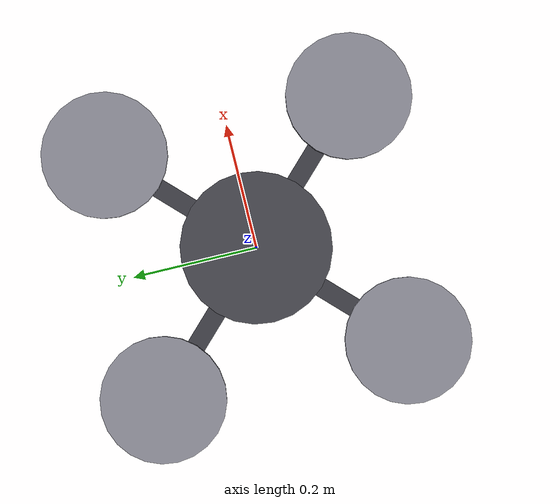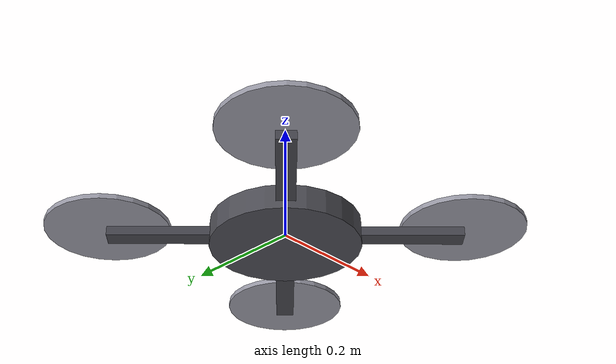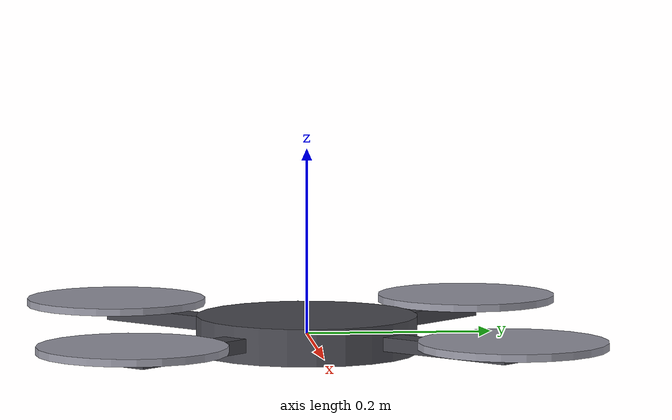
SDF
<?xml version="1.0" ?>
<sdf version="1.9">
  <model name="uav_1">
    <static>true</static>

    <plugin filename="gz-sim-logical-camera-system" name="gz::sim::systems::LogicalCamera"/>

    <link name="base_link">
      <inertial>
        <mass>1.0</mass>
        <inertia>
          <ixx>0.02</ixx><ixy>0</ixy><ixz>0</ixz>
          <iyy>0.02</iyy><iyz>0</iyz>
          <izz>0.04</izz>
        </inertia>
      </inertial>

      <collision name="base_collision">
        <geometry><cylinder><radius>0.12</radius><length>0.04</length></cylinder></geometry>
      </collision>

      <visual name="body">
        <pose>0 0 0 0 0 0</pose>
        <geometry><cylinder><radius>0.12</radius><length>0.04</length></cylinder></geometry>
        <material>
          <ambient>0.25 0.25 0.28 1</ambient>
          <diffuse>0.30 0.30 0.33 1</diffuse>
          <specular>0.15 0.15 0.15 1</specular>
        </material>
      </visual>

      <visual name="arm_nesw">
        <pose>0 0 0 0 0 0.7854</pose>
        <geometry><box><size>0.56 0.03 0.015</size></box></geometry>
        <material>
          <ambient>0.22 0.22 0.25 1</ambient>
          <diffuse>0.27 0.27 0.30 1</diffuse>
          <specular>0.10 0.10 0.10 1</specular>
        </material>
      </visual>

      <visual name="arm_nwse">
        <pose>0 0 0 0 0 -0.7854</pose>
        <geometry><box><size>0.56 0.03 0.015</size></box></geometry>
        <material>
          <ambient>0.22 0.22 0.25 1</ambient>
          <diffuse>0.27 0.27 0.30 1</diffuse>
          <specular>0.10 0.10 0.10 1</specular>
        </material>
      </visual>

      <visual name="rotor_ne">
        <pose>0.198 0.198 0.012 0 0 0</pose>
        <geometry><cylinder><radius>0.10</radius><length>0.008</length></cylinder></geometry>
        <material>
          <ambient>0.55 0.55 0.60 1</ambient>
          <diffuse>0.60 0.60 0.65 1</diffuse>
          <specular>0.20 0.20 0.20 1</specular>
        </material>
      </visual>

      <visual name="rotor_nw">
        <pose>-0.198 0.198 0.012 0 0 0</pose>
        <geometry><cylinder><radius>0.10</radius><length>0.008</length></cylinder></geometry>
        <material>
          <ambient>0.55 0.55 0.60 1</ambient>
          <diffuse>0.60 0.60 0.65 1</diffuse>
          <specular>0.20 0.20 0.20 1</specular>
        </material>
      </visual>

      <visual name="rotor_sw">
        <pose>-0.198 -0.198 0.012 0 0 0</pose>
        <geometry><cylinder><radius>0.10</radius><length>0.008</length></cylinder></geometry>
        <material>
          <ambient>0.55 0.55 0.60 1</ambient>
          <diffuse>0.60 0.60 0.65 1</diffuse>
          <specular>0.20 0.20 0.20 1</specular>
        </material>
      </visual>

      <visual name="rotor_se">
        <pose>0.198 -0.198 0.012 0 0 0</pose>
        <geometry><cylinder><radius>0.10</radius><length>0.008</length></cylinder></geometry>
        <material>
          <ambient>0.55 0.55 0.60 1</ambient>
          <diffuse>0.60 0.60 0.65 1</diffuse>
          <specular>0.20 0.20 0.20 1</specular>
        </material>
      </visual>

      <sensor name="logical_camera" type="logical_camera">
        <pose>0 0 0 0 1.5708 0</pose>
        <logical_camera>
          <near>0.5</near>
          <far>50.0</far>
          <horizontal_fov>2.618</horizontal_fov>
          <aspect_ratio>1.0</aspect_ratio>
        </logical_camera>
        <always_on>1</always_on>
        <update_rate>2</update_rate>
        <visualize>false</visualize>
      </sensor>
    </link>
  </model>
</sdf>
